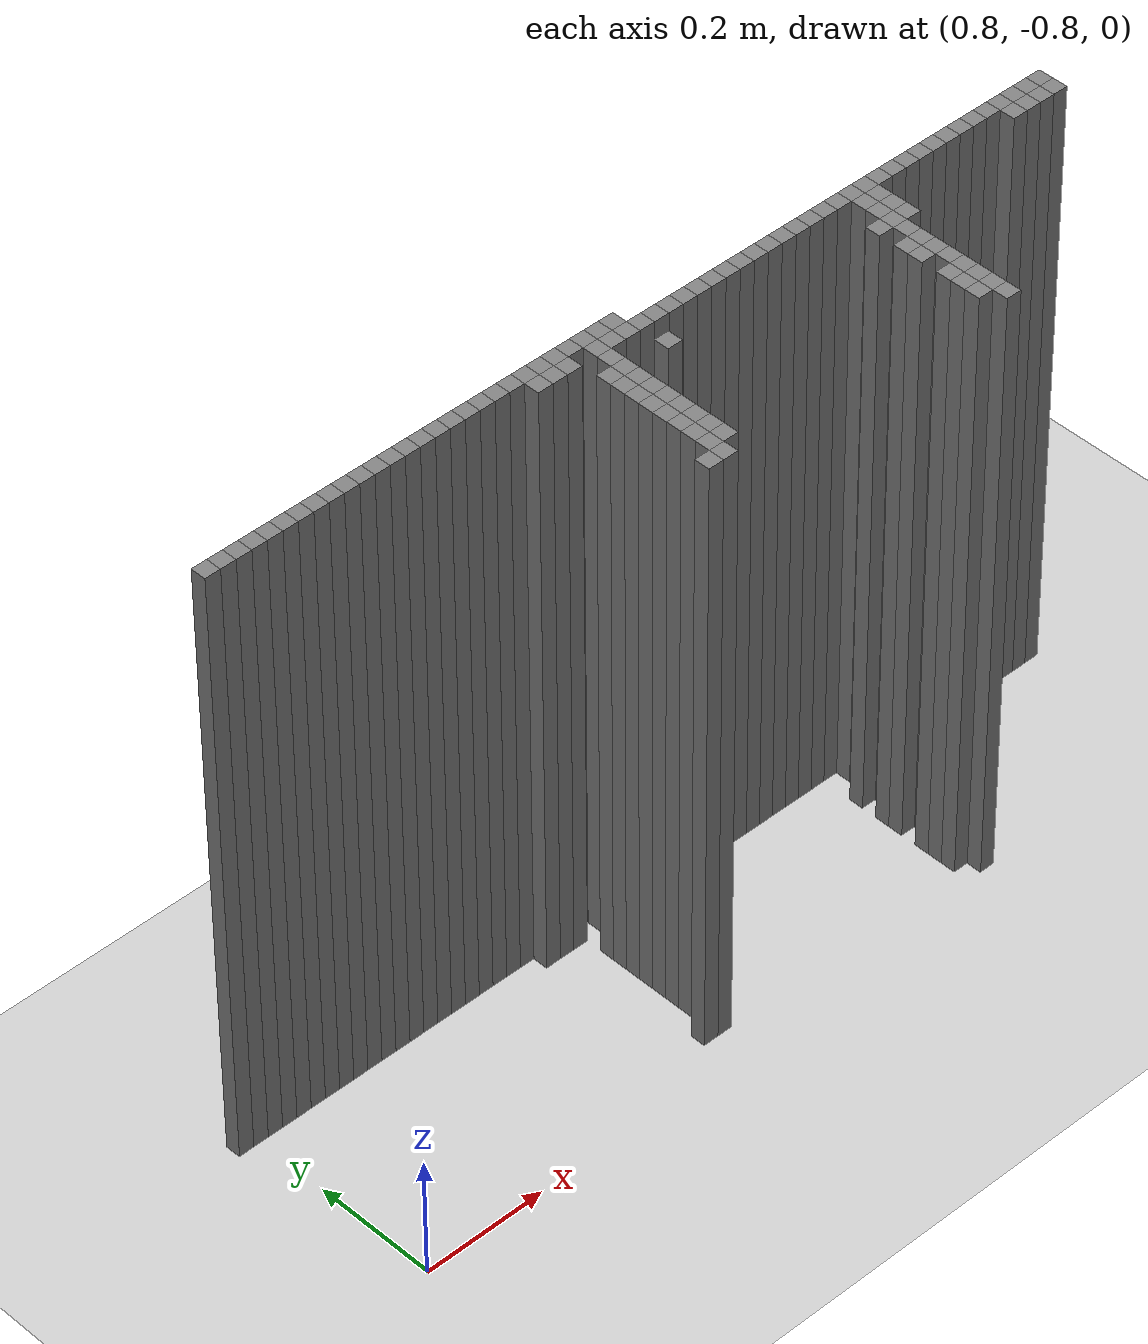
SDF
<sdf version="1.6">
 <world name="map_world">
  <include><uri>model://ground_plane</uri></include>
  <include><uri>model://sun</uri></include>
  <model name="obs_124_68">
   <static>true</static>
   <link name="link">
    <collision name="collision"><geometry><box><size>0.025 0.025 1.0</size></box></geometry></collision>
    <visual name="visual">
     <geometry><box><size>0.025 0.025 1.0</size></box></geometry>
     <material><ambient>0.5 0.5 0.5 1</ambient></material>
    </visual>
   </link>
   <pose>0.773765 -0.4690709999999998 0.5 0 0 0</pose>
  </model>
  <model name="obs_125_68">
   <static>true</static>
   <link name="link">
    <collision name="collision"><geometry><box><size>0.025 0.025 1.0</size></box></geometry></collision>
    <visual name="visual">
     <geometry><box><size>0.025 0.025 1.0</size></box></geometry>
     <material><ambient>0.5 0.5 0.5 1</ambient></material>
    </visual>
   </link>
   <pose>0.798765 -0.4690709999999998 0.5 0 0 0</pose>
  </model>
  <model name="obs_126_68">
   <static>true</static>
   <link name="link">
    <collision name="collision"><geometry><box><size>0.025 0.025 1.0</size></box></geometry></collision>
    <visual name="visual">
     <geometry><box><size>0.025 0.025 1.0</size></box></geometry>
     <material><ambient>0.5 0.5 0.5 1</ambient></material>
    </visual>
   </link>
   <pose>0.8237650000000003 -0.4690709999999998 0.5 0 0 0</pose>
  </model>
  <model name="obs_127_68">
   <static>true</static>
   <link name="link">
    <collision name="collision"><geometry><box><size>0.025 0.025 1.0</size></box></geometry></collision>
    <visual name="visual">
     <geometry><box><size>0.025 0.025 1.0</size></box></geometry>
     <material><ambient>0.5 0.5 0.5 1</ambient></material>
    </visual>
   </link>
   <pose>0.8487650000000002 -0.4690709999999998 0.5 0 0 0</pose>
  </model>
  <model name="obs_128_68">
   <static>true</static>
   <link name="link">
    <collision name="collision"><geometry><box><size>0.025 0.025 1.0</size></box></geometry></collision>
    <visual name="visual">
     <geometry><box><size>0.025 0.025 1.0</size></box></geometry>
     <material><ambient>0.5 0.5 0.5 1</ambient></material>
    </visual>
   </link>
   <pose>0.8737650000000001 -0.4690709999999998 0.5 0 0 0</pose>
  </model>
  <model name="obs_129_68">
   <static>true</static>
   <link name="link">
    <collision name="collision"><geometry><box><size>0.025 0.025 1.0</size></box></geometry></collision>
    <visual name="visual">
     <geometry><box><size>0.025 0.025 1.0</size></box></geometry>
     <material><ambient>0.5 0.5 0.5 1</ambient></material>
    </visual>
   </link>
   <pose>0.898765 -0.4690709999999998 0.5 0 0 0</pose>
  </model>
  <model name="obs_130_68">
   <static>true</static>
   <link name="link">
    <collision name="collision"><geometry><box><size>0.025 0.025 1.0</size></box></geometry></collision>
    <visual name="visual">
     <geometry><box><size>0.025 0.025 1.0</size></box></geometry>
     <material><ambient>0.5 0.5 0.5 1</ambient></material>
    </visual>
   </link>
   <pose>0.923765 -0.4690709999999998 0.5 0 0 0</pose>
  </model>
  <model name="obs_131_68">
   <static>true</static>
   <link name="link">
    <collision name="collision"><geometry><box><size>0.025 0.025 1.0</size></box></geometry></collision>
    <visual name="visual">
     <geometry><box><size>0.025 0.025 1.0</size></box></geometry>
     <material><ambient>0.5 0.5 0.5 1</ambient></material>
    </visual>
   </link>
   <pose>0.9487650000000003 -0.4690709999999998 0.5 0 0 0</pose>
  </model>
  <model name="obs_132_68">
   <static>true</static>
   <link name="link">
    <collision name="collision"><geometry><box><size>0.025 0.025 1.0</size></box></geometry></collision>
    <visual name="visual">
     <geometry><box><size>0.025 0.025 1.0</size></box></geometry>
     <material><ambient>0.5 0.5 0.5 1</ambient></material>
    </visual>
   </link>
   <pose>0.9737650000000002 -0.4690709999999998 0.5 0 0 0</pose>
  </model>
  <model name="obs_133_68">
   <static>true</static>
   <link name="link">
    <collision name="collision"><geometry><box><size>0.025 0.025 1.0</size></box></geometry></collision>
    <visual name="visual">
     <geometry><box><size>0.025 0.025 1.0</size></box></geometry>
     <material><ambient>0.5 0.5 0.5 1</ambient></material>
    </visual>
   </link>
   <pose>0.9987650000000001 -0.4690709999999998 0.5 0 0 0</pose>
  </model>
  <model name="obs_134_68">
   <static>true</static>
   <link name="link">
    <collision name="collision"><geometry><box><size>0.025 0.025 1.0</size></box></geometry></collision>
    <visual name="visual">
     <geometry><box><size>0.025 0.025 1.0</size></box></geometry>
     <material><ambient>0.5 0.5 0.5 1</ambient></material>
    </visual>
   </link>
   <pose>1.023765 -0.4690709999999998 0.5 0 0 0</pose>
  </model>
  <model name="obs_135_68">
   <static>true</static>
   <link name="link">
    <collision name="collision"><geometry><box><size>0.025 0.025 1.0</size></box></geometry></collision>
    <visual name="visual">
     <geometry><box><size>0.025 0.025 1.0</size></box></geometry>
     <material><ambient>0.5 0.5 0.5 1</ambient></material>
    </visual>
   </link>
   <pose>1.048765 -0.4690709999999998 0.5 0 0 0</pose>
  </model>
  <model name="obs_136_68">
   <static>true</static>
   <link name="link">
    <collision name="collision"><geometry><box><size>0.025 0.025 1.0</size></box></geometry></collision>
    <visual name="visual">
     <geometry><box><size>0.025 0.025 1.0</size></box></geometry>
     <material><ambient>0.5 0.5 0.5 1</ambient></material>
    </visual>
   </link>
   <pose>1.0737650000000003 -0.4690709999999998 0.5 0 0 0</pose>
  </model>
  <model name="obs_137_68">
   <static>true</static>
   <link name="link">
    <collision name="collision"><geometry><box><size>0.025 0.025 1.0</size></box></geometry></collision>
    <visual name="visual">
     <geometry><box><size>0.025 0.025 1.0</size></box></geometry>
     <material><ambient>0.5 0.5 0.5 1</ambient></material>
    </visual>
   </link>
   <pose>1.0987650000000002 -0.4690709999999998 0.5 0 0 0</pose>
  </model>
  <model name="obs_138_68">
   <static>true</static>
   <link name="link">
    <collision name="collision"><geometry><box><size>0.025 0.025 1.0</size></box></geometry></collision>
    <visual name="visual">
     <geometry><box><size>0.025 0.025 1.0</size></box></geometry>
     <material><ambient>0.5 0.5 0.5 1</ambient></material>
    </visual>
   </link>
   <pose>1.1237650000000001 -0.4690709999999998 0.5 0 0 0</pose>
  </model>
  <model name="obs_139_68">
   <static>true</static>
   <link name="link">
    <collision name="collision"><geometry><box><size>0.025 0.025 1.0</size></box></geometry></collision>
    <visual name="visual">
     <geometry><box><size>0.025 0.025 1.0</size></box></geometry>
     <material><ambient>0.5 0.5 0.5 1</ambient></material>
    </visual>
   </link>
   <pose>1.148765 -0.4690709999999998 0.5 0 0 0</pose>
  </model>
  <model name="obs_140_68">
   <static>true</static>
   <link name="link">
    <collision name="collision"><geometry><box><size>0.025 0.025 1.0</size></box></geometry></collision>
    <visual name="visual">
     <geometry><box><size>0.025 0.025 1.0</size></box></geometry>
     <material><ambient>0.5 0.5 0.5 1</ambient></material>
    </visual>
   </link>
   <pose>1.173765 -0.4690709999999998 0.5 0 0 0</pose>
  </model>
  <model name="obs_141_68">
   <static>true</static>
   <link name="link">
    <collision name="collision"><geometry><box><size>0.025 0.025 1.0</size></box></geometry></collision>
    <visual name="visual">
     <geometry><box><size>0.025 0.025 1.0</size></box></geometry>
     <material><ambient>0.5 0.5 0.5 1</ambient></material>
    </visual>
   </link>
   <pose>1.1987650000000003 -0.4690709999999998 0.5 0 0 0</pose>
  </model>
  <model name="obs_142_68">
   <static>true</static>
   <link name="link">
    <collision name="collision"><geometry><box><size>0.025 0.025 1.0</size></box></geometry></collision>
    <visual name="visual">
     <geometry><box><size>0.025 0.025 1.0</size></box></geometry>
     <material><ambient>0.5 0.5 0.5 1</ambient></material>
    </visual>
   </link>
   <pose>1.2237650000000002 -0.4690709999999998 0.5 0 0 0</pose>
  </model>
  <model name="obs_143_68">
   <static>true</static>
   <link name="link">
    <collision name="collision"><geometry><box><size>0.025 0.025 1.0</size></box></geometry></collision>
    <visual name="visual">
     <geometry><box><size>0.025 0.025 1.0</size></box></geometry>
     <material><ambient>0.5 0.5 0.5 1</ambient></material>
    </visual>
   </link>
   <pose>1.2487650000000001 -0.4690709999999998 0.5 0 0 0</pose>
  </model>
  <model name="obs_144_68">
   <static>true</static>
   <link name="link">
    <collision name="collision"><geometry><box><size>0.025 0.025 1.0</size></box></geometry></collision>
    <visual name="visual">
     <geometry><box><size>0.025 0.025 1.0</size></box></geometry>
     <material><ambient>0.5 0.5 0.5 1</ambient></material>
    </visual>
   </link>
   <pose>1.273765 -0.4690709999999998 0.5 0 0 0</pose>
  </model>
  <model name="obs_145_68">
   <static>true</static>
   <link name="link">
    <collision name="collision"><geometry><box><size>0.025 0.025 1.0</size></box></geometry></collision>
    <visual name="visual">
     <geometry><box><size>0.025 0.025 1.0</size></box></geometry>
     <material><ambient>0.5 0.5 0.5 1</ambient></material>
    </visual>
   </link>
   <pose>1.298765 -0.4690709999999998 0.5 0 0 0</pose>
  </model>
  <model name="obs_146_68">
   <static>true</static>
   <link name="link">
    <collision name="collision"><geometry><box><size>0.025 0.025 1.0</size></box></geometry></collision>
    <visual name="visual">
     <geometry><box><size>0.025 0.025 1.0</size></box></geometry>
     <material><ambient>0.5 0.5 0.5 1</ambient></material>
    </visual>
   </link>
   <pose>1.3237650000000003 -0.4690709999999998 0.5 0 0 0</pose>
  </model>
  <model name="obs_147_68">
   <static>true</static>
   <link name="link">
    <collision name="collision"><geometry><box><size>0.025 0.025 1.0</size></box></geometry></collision>
    <visual name="visual">
     <geometry><box><size>0.025 0.025 1.0</size></box></geometry>
     <material><ambient>0.5 0.5 0.5 1</ambient></material>
    </visual>
   </link>
   <pose>1.3487650000000002 -0.4690709999999998 0.5 0 0 0</pose>
  </model>
  <model name="obs_148_68">
   <static>true</static>
   <link name="link">
    <collision name="collision"><geometry><box><size>0.025 0.025 1.0</size></box></geometry></collision>
    <visual name="visual">
     <geometry><box><size>0.025 0.025 1.0</size></box></geometry>
     <material><ambient>0.5 0.5 0.5 1</ambient></material>
    </visual>
   </link>
   <pose>1.3737650000000001 -0.4690709999999998 0.5 0 0 0</pose>
  </model>
  <model name="obs_149_68">
   <static>true</static>
   <link name="link">
    <collision name="collision"><geometry><box><size>0.025 0.025 1.0</size></box></geometry></collision>
    <visual name="visual">
     <geometry><box><size>0.025 0.025 1.0</size></box></geometry>
     <material><ambient>0.5 0.5 0.5 1</ambient></material>
    </visual>
   </link>
   <pose>1.398765 -0.4690709999999998 0.5 0 0 0</pose>
  </model>
  <model name="obs_150_68">
   <static>true</static>
   <link name="link">
    <collision name="collision"><geometry><box><size>0.025 0.025 1.0</size></box></geometry></collision>
    <visual name="visual">
     <geometry><box><size>0.025 0.025 1.0</size></box></geometry>
     <material><ambient>0.5 0.5 0.5 1</ambient></material>
    </visual>
   </link>
   <pose>1.423765 -0.4690709999999998 0.5 0 0 0</pose>
  </model>
  <model name="obs_151_68">
   <static>true</static>
   <link name="link">
    <collision name="collision"><geometry><box><size>0.025 0.025 1.0</size></box></geometry></collision>
    <visual name="visual">
     <geometry><box><size>0.025 0.025 1.0</size></box></geometry>
     <material><ambient>0.5 0.5 0.5 1</ambient></material>
    </visual>
   </link>
   <pose>1.4487650000000003 -0.4690709999999998 0.5 0 0 0</pose>
  </model>
  <model name="obs_145_69">
   <static>true</static>
   <link name="link">
    <collision name="collision"><geometry><box><size>0.025 0.025 1.0</size></box></geometry></collision>
    <visual name="visual">
     <geometry><box><size>0.025 0.025 1.0</size></box></geometry>
     <material><ambient>0.5 0.5 0.5 1</ambient></material>
    </visual>
   </link>
   <pose>1.298765 -0.4940709999999999 0.5 0 0 0</pose>
  </model>
  <model name="obs_146_69">
   <static>true</static>
   <link name="link">
    <collision name="collision"><geometry><box><size>0.025 0.025 1.0</size></box></geometry></collision>
    <visual name="visual">
     <geometry><box><size>0.025 0.025 1.0</size></box></geometry>
     <material><ambient>0.5 0.5 0.5 1</ambient></material>
    </visual>
   </link>
   <pose>1.3237650000000003 -0.4940709999999999 0.5 0 0 0</pose>
  </model>
  <model name="obs_147_69">
   <static>true</static>
   <link name="link">
    <collision name="collision"><geometry><box><size>0.025 0.025 1.0</size></box></geometry></collision>
    <visual name="visual">
     <geometry><box><size>0.025 0.025 1.0</size></box></geometry>
     <material><ambient>0.5 0.5 0.5 1</ambient></material>
    </visual>
   </link>
   <pose>1.3487650000000002 -0.4940709999999999 0.5 0 0 0</pose>
  </model>
  <model name="obs_149_69">
   <static>true</static>
   <link name="link">
    <collision name="collision"><geometry><box><size>0.025 0.025 1.0</size></box></geometry></collision>
    <visual name="visual">
     <geometry><box><size>0.025 0.025 1.0</size></box></geometry>
     <material><ambient>0.5 0.5 0.5 1</ambient></material>
    </visual>
   </link>
   <pose>1.398765 -0.4940709999999999 0.5 0 0 0</pose>
  </model>
  <model name="obs_150_69">
   <static>true</static>
   <link name="link">
    <collision name="collision"><geometry><box><size>0.025 0.025 1.0</size></box></geometry></collision>
    <visual name="visual">
     <geometry><box><size>0.025 0.025 1.0</size></box></geometry>
     <material><ambient>0.5 0.5 0.5 1</ambient></material>
    </visual>
   </link>
   <pose>1.423765 -0.4940709999999999 0.5 0 0 0</pose>
  </model>
  <model name="obs_151_69">
   <static>true</static>
   <link name="link">
    <collision name="collision"><geometry><box><size>0.025 0.025 1.0</size></box></geometry></collision>
    <visual name="visual">
     <geometry><box><size>0.025 0.025 1.0</size></box></geometry>
     <material><ambient>0.5 0.5 0.5 1</ambient></material>
    </visual>
   </link>
   <pose>1.4487650000000003 -0.4940709999999999 0.5 0 0 0</pose>
  </model>
  <model name="obs_152_69">
   <static>true</static>
   <link name="link">
    <collision name="collision"><geometry><box><size>0.025 0.025 1.0</size></box></geometry></collision>
    <visual name="visual">
     <geometry><box><size>0.025 0.025 1.0</size></box></geometry>
     <material><ambient>0.5 0.5 0.5 1</ambient></material>
    </visual>
   </link>
   <pose>1.4737650000000002 -0.4940709999999999 0.5 0 0 0</pose>
  </model>
  <model name="obs_153_69">
   <static>true</static>
   <link name="link">
    <collision name="collision"><geometry><box><size>0.025 0.025 1.0</size></box></geometry></collision>
    <visual name="visual">
     <geometry><box><size>0.025 0.025 1.0</size></box></geometry>
     <material><ambient>0.5 0.5 0.5 1</ambient></material>
    </visual>
   </link>
   <pose>1.4987650000000001 -0.4940709999999999 0.5 0 0 0</pose>
  </model>
  <model name="obs_154_69">
   <static>true</static>
   <link name="link">
    <collision name="collision"><geometry><box><size>0.025 0.025 1.0</size></box></geometry></collision>
    <visual name="visual">
     <geometry><box><size>0.025 0.025 1.0</size></box></geometry>
     <material><ambient>0.5 0.5 0.5 1</ambient></material>
    </visual>
   </link>
   <pose>1.523765 -0.4940709999999999 0.5 0 0 0</pose>
  </model>
  <model name="obs_155_69">
   <static>true</static>
   <link name="link">
    <collision name="collision"><geometry><box><size>0.025 0.025 1.0</size></box></geometry></collision>
    <visual name="visual">
     <geometry><box><size>0.025 0.025 1.0</size></box></geometry>
     <material><ambient>0.5 0.5 0.5 1</ambient></material>
    </visual>
   </link>
   <pose>1.548765 -0.4940709999999999 0.5 0 0 0</pose>
  </model>
  <model name="obs_156_69">
   <static>true</static>
   <link name="link">
    <collision name="collision"><geometry><box><size>0.025 0.025 1.0</size></box></geometry></collision>
    <visual name="visual">
     <geometry><box><size>0.025 0.025 1.0</size></box></geometry>
     <material><ambient>0.5 0.5 0.5 1</ambient></material>
    </visual>
   </link>
   <pose>1.5737650000000003 -0.4940709999999999 0.5 0 0 0</pose>
  </model>
  <model name="obs_157_69">
   <static>true</static>
   <link name="link">
    <collision name="collision"><geometry><box><size>0.025 0.025 1.0</size></box></geometry></collision>
    <visual name="visual">
     <geometry><box><size>0.025 0.025 1.0</size></box></geometry>
     <material><ambient>0.5 0.5 0.5 1</ambient></material>
    </visual>
   </link>
   <pose>1.5987650000000002 -0.4940709999999999 0.5 0 0 0</pose>
  </model>
  <model name="obs_158_69">
   <static>true</static>
   <link name="link">
    <collision name="collision"><geometry><box><size>0.025 0.025 1.0</size></box></geometry></collision>
    <visual name="visual">
     <geometry><box><size>0.025 0.025 1.0</size></box></geometry>
     <material><ambient>0.5 0.5 0.5 1</ambient></material>
    </visual>
   </link>
   <pose>1.6237650000000001 -0.4940709999999999 0.5 0 0 0</pose>
  </model>
  <model name="obs_159_69">
   <static>true</static>
   <link name="link">
    <collision name="collision"><geometry><box><size>0.025 0.025 1.0</size></box></geometry></collision>
    <visual name="visual">
     <geometry><box><size>0.025 0.025 1.0</size></box></geometry>
     <material><ambient>0.5 0.5 0.5 1</ambient></material>
    </visual>
   </link>
   <pose>1.648765 -0.4940709999999999 0.5 0 0 0</pose>
  </model>
  <model name="obs_160_69">
   <static>true</static>
   <link name="link">
    <collision name="collision"><geometry><box><size>0.025 0.025 1.0</size></box></geometry></collision>
    <visual name="visual">
     <geometry><box><size>0.025 0.025 1.0</size></box></geometry>
     <material><ambient>0.5 0.5 0.5 1</ambient></material>
    </visual>
   </link>
   <pose>1.673765 -0.4940709999999999 0.5 0 0 0</pose>
  </model>
  <model name="obs_161_69">
   <static>true</static>
   <link name="link">
    <collision name="collision"><geometry><box><size>0.025 0.025 1.0</size></box></geometry></collision>
    <visual name="visual">
     <geometry><box><size>0.025 0.025 1.0</size></box></geometry>
     <material><ambient>0.5 0.5 0.5 1</ambient></material>
    </visual>
   </link>
   <pose>1.6987650000000003 -0.4940709999999999 0.5 0 0 0</pose>
  </model>
  <model name="obs_162_69">
   <static>true</static>
   <link name="link">
    <collision name="collision"><geometry><box><size>0.025 0.025 1.0</size></box></geometry></collision>
    <visual name="visual">
     <geometry><box><size>0.025 0.025 1.0</size></box></geometry>
     <material><ambient>0.5 0.5 0.5 1</ambient></material>
    </visual>
   </link>
   <pose>1.7237649999999998 -0.4940709999999999 0.5 0 0 0</pose>
  </model>
  <model name="obs_163_69">
   <static>true</static>
   <link name="link">
    <collision name="collision"><geometry><box><size>0.025 0.025 1.0</size></box></geometry></collision>
    <visual name="visual">
     <geometry><box><size>0.025 0.025 1.0</size></box></geometry>
     <material><ambient>0.5 0.5 0.5 1</ambient></material>
    </visual>
   </link>
   <pose>1.7487650000000001 -0.4940709999999999 0.5 0 0 0</pose>
  </model>
  <model name="obs_164_69">
   <static>true</static>
   <link name="link">
    <collision name="collision"><geometry><box><size>0.025 0.025 1.0</size></box></geometry></collision>
    <visual name="visual">
     <geometry><box><size>0.025 0.025 1.0</size></box></geometry>
     <material><ambient>0.5 0.5 0.5 1</ambient></material>
    </visual>
   </link>
   <pose>1.7737650000000005 -0.4940709999999999 0.5 0 0 0</pose>
  </model>
  <model name="obs_165_69">
   <static>true</static>
   <link name="link">
    <collision name="collision"><geometry><box><size>0.025 0.025 1.0</size></box></geometry></collision>
    <visual name="visual">
     <geometry><box><size>0.025 0.025 1.0</size></box></geometry>
     <material><ambient>0.5 0.5 0.5 1</ambient></material>
    </visual>
   </link>
   <pose>1.798765 -0.4940709999999999 0.5 0 0 0</pose>
  </model>
  <model name="obs_166_69">
   <static>true</static>
   <link name="link">
    <collision name="collision"><geometry><box><size>0.025 0.025 1.0</size></box></geometry></collision>
    <visual name="visual">
     <geometry><box><size>0.025 0.025 1.0</size></box></geometry>
     <material><ambient>0.5 0.5 0.5 1</ambient></material>
    </visual>
   </link>
   <pose>1.8237650000000003 -0.4940709999999999 0.5 0 0 0</pose>
  </model>
  <model name="obs_167_69">
   <static>true</static>
   <link name="link">
    <collision name="collision"><geometry><box><size>0.025 0.025 1.0</size></box></geometry></collision>
    <visual name="visual">
     <geometry><box><size>0.025 0.025 1.0</size></box></geometry>
     <material><ambient>0.5 0.5 0.5 1</ambient></material>
    </visual>
   </link>
   <pose>1.8487649999999998 -0.4940709999999999 0.5 0 0 0</pose>
  </model>
  <model name="obs_168_69">
   <static>true</static>
   <link name="link">
    <collision name="collision"><geometry><box><size>0.025 0.025 1.0</size></box></geometry></collision>
    <visual name="visual">
     <geometry><box><size>0.025 0.025 1.0</size></box></geometry>
     <material><ambient>0.5 0.5 0.5 1</ambient></material>
    </visual>
   </link>
   <pose>1.8737650000000001 -0.4940709999999999 0.5 0 0 0</pose>
  </model>
  <model name="obs_169_69">
   <static>true</static>
   <link name="link">
    <collision name="collision"><geometry><box><size>0.025 0.025 1.0</size></box></geometry></collision>
    <visual name="visual">
     <geometry><box><size>0.025 0.025 1.0</size></box></geometry>
     <material><ambient>0.5 0.5 0.5 1</ambient></material>
    </visual>
   </link>
   <pose>1.8987650000000005 -0.4940709999999999 0.5 0 0 0</pose>
  </model>
  <model name="obs_170_69">
   <static>true</static>
   <link name="link">
    <collision name="collision"><geometry><box><size>0.025 0.025 1.0</size></box></geometry></collision>
    <visual name="visual">
     <geometry><box><size>0.025 0.025 1.0</size></box></geometry>
     <material><ambient>0.5 0.5 0.5 1</ambient></material>
    </visual>
   </link>
   <pose>1.923765 -0.4940709999999999 0.5 0 0 0</pose>
  </model>
  <model name="obs_171_69">
   <static>true</static>
   <link name="link">
    <collision name="collision"><geometry><box><size>0.025 0.025 1.0</size></box></geometry></collision>
    <visual name="visual">
     <geometry><box><size>0.025 0.025 1.0</size></box></geometry>
     <material><ambient>0.5 0.5 0.5 1</ambient></material>
    </visual>
   </link>
   <pose>1.9487650000000003 -0.4940709999999999 0.5 0 0 0</pose>
  </model>
  <model name="obs_172_69">
   <static>true</static>
   <link name="link">
    <collision name="collision"><geometry><box><size>0.025 0.025 1.0</size></box></geometry></collision>
    <visual name="visual">
     <geometry><box><size>0.025 0.025 1.0</size></box></geometry>
     <material><ambient>0.5 0.5 0.5 1</ambient></material>
    </visual>
   </link>
   <pose>1.9737649999999998 -0.4940709999999999 0.5 0 0 0</pose>
  </model>
  <model name="obs_173_69">
   <static>true</static>
   <link name="link">
    <collision name="collision"><geometry><box><size>0.025 0.025 1.0</size></box></geometry></collision>
    <visual name="visual">
     <geometry><box><size>0.025 0.025 1.0</size></box></geometry>
     <material><ambient>0.5 0.5 0.5 1</ambient></material>
    </visual>
   </link>
   <pose>1.9987650000000001 -0.4940709999999999 0.5 0 0 0</pose>
  </model>
  <model name="obs_174_69">
   <static>true</static>
   <link name="link">
    <collision name="collision"><geometry><box><size>0.025 0.025 1.0</size></box></geometry></collision>
    <visual name="visual">
     <geometry><box><size>0.025 0.025 1.0</size></box></geometry>
     <material><ambient>0.5 0.5 0.5 1</ambient></material>
    </visual>
   </link>
   <pose>2.0237650000000005 -0.4940709999999999 0.5 0 0 0</pose>
  </model>
  <model name="obs_175_69">
   <static>true</static>
   <link name="link">
    <collision name="collision"><geometry><box><size>0.025 0.025 1.0</size></box></geometry></collision>
    <visual name="visual">
     <geometry><box><size>0.025 0.025 1.0</size></box></geometry>
     <material><ambient>0.5 0.5 0.5 1</ambient></material>
    </visual>
   </link>
   <pose>2.048765 -0.4940709999999999 0.5 0 0 0</pose>
  </model>
  <model name="obs_176_69">
   <static>true</static>
   <link name="link">
    <collision name="collision"><geometry><box><size>0.025 0.025 1.0</size></box></geometry></collision>
    <visual name="visual">
     <geometry><box><size>0.025 0.025 1.0</size></box></geometry>
     <material><ambient>0.5 0.5 0.5 1</ambient></material>
    </visual>
   </link>
   <pose>2.0737650000000003 -0.4940709999999999 0.5 0 0 0</pose>
  </model>
  <model name="obs_177_69">
   <static>true</static>
   <link name="link">
    <collision name="collision"><geometry><box><size>0.025 0.025 1.0</size></box></geometry></collision>
    <visual name="visual">
     <geometry><box><size>0.025 0.025 1.0</size></box></geometry>
     <material><ambient>0.5 0.5 0.5 1</ambient></material>
    </visual>
   </link>
   <pose>2.0987649999999998 -0.4940709999999999 0.5 0 0 0</pose>
  </model>
  <model name="obs_178_69">
   <static>true</static>
   <link name="link">
    <collision name="collision"><geometry><box><size>0.025 0.025 1.0</size></box></geometry></collision>
    <visual name="visual">
     <geometry><box><size>0.025 0.025 1.0</size></box></geometry>
     <material><ambient>0.5 0.5 0.5 1</ambient></material>
    </visual>
   </link>
   <pose>2.123765 -0.4940709999999999 0.5 0 0 0</pose>
  </model>
  <model name="obs_179_69">
   <static>true</static>
   <link name="link">
    <collision name="collision"><geometry><box><size>0.025 0.025 1.0</size></box></geometry></collision>
    <visual name="visual">
     <geometry><box><size>0.025 0.025 1.0</size></box></geometry>
     <material><ambient>0.5 0.5 0.5 1</ambient></material>
    </visual>
   </link>
   <pose>2.1487650000000005 -0.4940709999999999 0.5 0 0 0</pose>
  </model>
  <model name="obs_180_69">
   <static>true</static>
   <link name="link">
    <collision name="collision"><geometry><box><size>0.025 0.025 1.0</size></box></geometry></collision>
    <visual name="visual">
     <geometry><box><size>0.025 0.025 1.0</size></box></geometry>
     <material><ambient>0.5 0.5 0.5 1</ambient></material>
    </visual>
   </link>
   <pose>2.173765 -0.4940709999999999 0.5 0 0 0</pose>
  </model>
  <model name="obs_181_69">
   <static>true</static>
   <link name="link">
    <collision name="collision"><geometry><box><size>0.025 0.025 1.0</size></box></geometry></collision>
    <visual name="visual">
     <geometry><box><size>0.025 0.025 1.0</size></box></geometry>
     <material><ambient>0.5 0.5 0.5 1</ambient></material>
    </visual>
   </link>
   <pose>2.1987650000000003 -0.4940709999999999 0.5 0 0 0</pose>
  </model>
  <model name="obs_149_70">
   <static>true</static>
   <link name="link">
    <collision name="collision"><geometry><box><size>0.025 0.025 1.0</size></box></geometry></collision>
    <visual name="visual">
     <geometry><box><size>0.025 0.025 1.0</size></box></geometry>
     <material><ambient>0.5 0.5 0.5 1</ambient></material>
    </visual>
   </link>
   <pose>1.398765 -0.5190709999999998 0.5 0 0 0</pose>
  </model>
  <model name="obs_167_70">
   <static>true</static>
   <link name="link">
    <collision name="collision"><geometry><box><size>0.025 0.025 1.0</size></box></geometry></collision>
    <visual name="visual">
     <geometry><box><size>0.025 0.025 1.0</size></box></geometry>
     <material><ambient>0.5 0.5 0.5 1</ambient></material>
    </visual>
   </link>
   <pose>1.8487649999999998 -0.5190709999999998 0.5 0 0 0</pose>
  </model>
  <model name="obs_168_70">
   <static>true</static>
   <link name="link">
    <collision name="collision"><geometry><box><size>0.025 0.025 1.0</size></box></geometry></collision>
    <visual name="visual">
     <geometry><box><size>0.025 0.025 1.0</size></box></geometry>
     <material><ambient>0.5 0.5 0.5 1</ambient></material>
    </visual>
   </link>
   <pose>1.8737650000000001 -0.5190709999999998 0.5 0 0 0</pose>
  </model>
  <model name="obs_178_70">
   <static>true</static>
   <link name="link">
    <collision name="collision"><geometry><box><size>0.025 0.025 1.0</size></box></geometry></collision>
    <visual name="visual">
     <geometry><box><size>0.025 0.025 1.0</size></box></geometry>
     <material><ambient>0.5 0.5 0.5 1</ambient></material>
    </visual>
   </link>
   <pose>2.123765 -0.5190709999999998 0.5 0 0 0</pose>
  </model>
  <model name="obs_179_70">
   <static>true</static>
   <link name="link">
    <collision name="collision"><geometry><box><size>0.025 0.025 1.0</size></box></geometry></collision>
    <visual name="visual">
     <geometry><box><size>0.025 0.025 1.0</size></box></geometry>
     <material><ambient>0.5 0.5 0.5 1</ambient></material>
    </visual>
   </link>
   <pose>2.1487650000000005 -0.5190709999999998 0.5 0 0 0</pose>
  </model>
  <model name="obs_180_70">
   <static>true</static>
   <link name="link">
    <collision name="collision"><geometry><box><size>0.025 0.025 1.0</size></box></geometry></collision>
    <visual name="visual">
     <geometry><box><size>0.025 0.025 1.0</size></box></geometry>
     <material><ambient>0.5 0.5 0.5 1</ambient></material>
    </visual>
   </link>
   <pose>2.173765 -0.5190709999999998 0.5 0 0 0</pose>
  </model>
  <model name="obs_181_70">
   <static>true</static>
   <link name="link">
    <collision name="collision"><geometry><box><size>0.025 0.025 1.0</size></box></geometry></collision>
    <visual name="visual">
     <geometry><box><size>0.025 0.025 1.0</size></box></geometry>
     <material><ambient>0.5 0.5 0.5 1</ambient></material>
    </visual>
   </link>
   <pose>2.1987650000000003 -0.5190709999999998 0.5 0 0 0</pose>
  </model>
  <model name="obs_148_71">
   <static>true</static>
   <link name="link">
    <collision name="collision"><geometry><box><size>0.025 0.025 1.0</size></box></geometry></collision>
    <visual name="visual">
     <geometry><box><size>0.025 0.025 1.0</size></box></geometry>
     <material><ambient>0.5 0.5 0.5 1</ambient></material>
    </visual>
   </link>
   <pose>1.3737650000000001 -0.5440709999999997 0.5 0 0 0</pose>
  </model>
  <model name="obs_149_71">
   <static>true</static>
   <link name="link">
    <collision name="collision"><geometry><box><size>0.025 0.025 1.0</size></box></geometry></collision>
    <visual name="visual">
     <geometry><box><size>0.025 0.025 1.0</size></box></geometry>
     <material><ambient>0.5 0.5 0.5 1</ambient></material>
    </visual>
   </link>
   <pose>1.398765 -0.5440709999999997 0.5 0 0 0</pose>
  </model>
  <model name="obs_152_71">
   <static>true</static>
   <link name="link">
    <collision name="collision"><geometry><box><size>0.025 0.025 1.0</size></box></geometry></collision>
    <visual name="visual">
     <geometry><box><size>0.025 0.025 1.0</size></box></geometry>
     <material><ambient>0.5 0.5 0.5 1</ambient></material>
    </visual>
   </link>
   <pose>1.4737650000000002 -0.5440709999999997 0.5 0 0 0</pose>
  </model>
  <model name="obs_167_71">
   <static>true</static>
   <link name="link">
    <collision name="collision"><geometry><box><size>0.025 0.025 1.0</size></box></geometry></collision>
    <visual name="visual">
     <geometry><box><size>0.025 0.025 1.0</size></box></geometry>
     <material><ambient>0.5 0.5 0.5 1</ambient></material>
    </visual>
   </link>
   <pose>1.8487649999999998 -0.5440709999999997 0.5 0 0 0</pose>
  </model>
  <model name="obs_168_71">
   <static>true</static>
   <link name="link">
    <collision name="collision"><geometry><box><size>0.025 0.025 1.0</size></box></geometry></collision>
    <visual name="visual">
     <geometry><box><size>0.025 0.025 1.0</size></box></geometry>
     <material><ambient>0.5 0.5 0.5 1</ambient></material>
    </visual>
   </link>
   <pose>1.8737650000000001 -0.5440709999999997 0.5 0 0 0</pose>
  </model>
  <model name="obs_148_72">
   <static>true</static>
   <link name="link">
    <collision name="collision"><geometry><box><size>0.025 0.025 1.0</size></box></geometry></collision>
    <visual name="visual">
     <geometry><box><size>0.025 0.025 1.0</size></box></geometry>
     <material><ambient>0.5 0.5 0.5 1</ambient></material>
    </visual>
   </link>
   <pose>1.3737650000000001 -0.5690709999999999 0.5 0 0 0</pose>
  </model>
  <model name="obs_149_72">
   <static>true</static>
   <link name="link">
    <collision name="collision"><geometry><box><size>0.025 0.025 1.0</size></box></geometry></collision>
    <visual name="visual">
     <geometry><box><size>0.025 0.025 1.0</size></box></geometry>
     <material><ambient>0.5 0.5 0.5 1</ambient></material>
    </visual>
   </link>
   <pose>1.398765 -0.5690709999999999 0.5 0 0 0</pose>
  </model>
  <model name="obs_166_72">
   <static>true</static>
   <link name="link">
    <collision name="collision"><geometry><box><size>0.025 0.025 1.0</size></box></geometry></collision>
    <visual name="visual">
     <geometry><box><size>0.025 0.025 1.0</size></box></geometry>
     <material><ambient>0.5 0.5 0.5 1</ambient></material>
    </visual>
   </link>
   <pose>1.8237650000000003 -0.5690709999999999 0.5 0 0 0</pose>
  </model>
  <model name="obs_167_72">
   <static>true</static>
   <link name="link">
    <collision name="collision"><geometry><box><size>0.025 0.025 1.0</size></box></geometry></collision>
    <visual name="visual">
     <geometry><box><size>0.025 0.025 1.0</size></box></geometry>
     <material><ambient>0.5 0.5 0.5 1</ambient></material>
    </visual>
   </link>
   <pose>1.8487649999999998 -0.5690709999999999 0.5 0 0 0</pose>
  </model>
  <model name="obs_168_72">
   <static>true</static>
   <link name="link">
    <collision name="collision"><geometry><box><size>0.025 0.025 1.0</size></box></geometry></collision>
    <visual name="visual">
     <geometry><box><size>0.025 0.025 1.0</size></box></geometry>
     <material><ambient>0.5 0.5 0.5 1</ambient></material>
    </visual>
   </link>
   <pose>1.8737650000000001 -0.5690709999999999 0.5 0 0 0</pose>
  </model>
  <model name="obs_148_73">
   <static>true</static>
   <link name="link">
    <collision name="collision"><geometry><box><size>0.025 0.025 1.0</size></box></geometry></collision>
    <visual name="visual">
     <geometry><box><size>0.025 0.025 1.0</size></box></geometry>
     <material><ambient>0.5 0.5 0.5 1</ambient></material>
    </visual>
   </link>
   <pose>1.3737650000000001 -0.5940709999999998 0.5 0 0 0</pose>
  </model>
  <model name="obs_149_73">
   <static>true</static>
   <link name="link">
    <collision name="collision"><geometry><box><size>0.025 0.025 1.0</size></box></geometry></collision>
    <visual name="visual">
     <geometry><box><size>0.025 0.025 1.0</size></box></geometry>
     <material><ambient>0.5 0.5 0.5 1</ambient></material>
    </visual>
   </link>
   <pose>1.398765 -0.5940709999999998 0.5 0 0 0</pose>
  </model>
  <model name="obs_167_73">
   <static>true</static>
   <link name="link">
    <collision name="collision"><geometry><box><size>0.025 0.025 1.0</size></box></geometry></collision>
    <visual name="visual">
     <geometry><box><size>0.025 0.025 1.0</size></box></geometry>
     <material><ambient>0.5 0.5 0.5 1</ambient></material>
    </visual>
   </link>
   <pose>1.8487649999999998 -0.5940709999999998 0.5 0 0 0</pose>
  </model>
  <model name="obs_148_74">
   <static>true</static>
   <link name="link">
    <collision name="collision"><geometry><box><size>0.025 0.025 1.0</size></box></geometry></collision>
    <visual name="visual">
     <geometry><box><size>0.025 0.025 1.0</size></box></geometry>
     <material><ambient>0.5 0.5 0.5 1</ambient></material>
    </visual>
   </link>
   <pose>1.3737650000000001 -0.6190709999999999 0.5 0 0 0</pose>
  </model>
  <model name="obs_149_74">
   <static>true</static>
   <link name="link">
    <collision name="collision"><geometry><box><size>0.025 0.025 1.0</size></box></geometry></collision>
    <visual name="visual">
     <geometry><box><size>0.025 0.025 1.0</size></box></geometry>
     <material><ambient>0.5 0.5 0.5 1</ambient></material>
    </visual>
   </link>
   <pose>1.398765 -0.6190709999999999 0.5 0 0 0</pose>
  </model>
  <model name="obs_166_74">
   <static>true</static>
   <link name="link">
    <collision name="collision"><geometry><box><size>0.025 0.025 1.0</size></box></geometry></collision>
    <visual name="visual">
     <geometry><box><size>0.025 0.025 1.0</size></box></geometry>
     <material><ambient>0.5 0.5 0.5 1</ambient></material>
    </visual>
   </link>
   <pose>1.8237650000000003 -0.6190709999999999 0.5 0 0 0</pose>
  </model>
  <model name="obs_167_74">
   <static>true</static>
   <link name="link">
    <collision name="collision"><geometry><box><size>0.025 0.025 1.0</size></box></geometry></collision>
    <visual name="visual">
     <geometry><box><size>0.025 0.025 1.0</size></box></geometry>
     <material><ambient>0.5 0.5 0.5 1</ambient></material>
    </visual>
   </link>
   <pose>1.8487649999999998 -0.6190709999999999 0.5 0 0 0</pose>
  </model>
  <model name="obs_148_75">
   <static>true</static>
   <link name="link">
    <collision name="collision"><geometry><box><size>0.025 0.025 1.0</size></box></geometry></collision>
    <visual name="visual">
     <geometry><box><size>0.025 0.025 1.0</size></box></geometry>
     <material><ambient>0.5 0.5 0.5 1</ambient></material>
    </visual>
   </link>
   <pose>1.3737650000000001 -0.6440709999999998 0.5 0 0 0</pose>
  </model>
  <model name="obs_149_75">
   <static>true</static>
   <link name="link">
    <collision name="collision"><geometry><box><size>0.025 0.025 1.0</size></box></geometry></collision>
    <visual name="visual">
     <geometry><box><size>0.025 0.025 1.0</size></box></geometry>
     <material><ambient>0.5 0.5 0.5 1</ambient></material>
    </visual>
   </link>
   <pose>1.398765 -0.6440709999999998 0.5 0 0 0</pose>
  </model>
  <model name="obs_166_75">
   <static>true</static>
   <link name="link">
    <collision name="collision"><geometry><box><size>0.025 0.025 1.0</size></box></geometry></collision>
    <visual name="visual">
     <geometry><box><size>0.025 0.025 1.0</size></box></geometry>
     <material><ambient>0.5 0.5 0.5 1</ambient></material>
    </visual>
   </link>
   <pose>1.8237650000000003 -0.6440709999999998 0.5 0 0 0</pose>
  </model>
  <model name="obs_167_75">
   <static>true</static>
   <link name="link">
    <collision name="collision"><geometry><box><size>0.025 0.025 1.0</size></box></geometry></collision>
    <visual name="visual">
     <geometry><box><size>0.025 0.025 1.0</size></box></geometry>
     <material><ambient>0.5 0.5 0.5 1</ambient></material>
    </visual>
   </link>
   <pose>1.8487649999999998 -0.6440709999999998 0.5 0 0 0</pose>
  </model>
  <model name="obs_148_76">
   <static>true</static>
   <link name="link">
    <collision name="collision"><geometry><box><size>0.025 0.025 1.0</size></box></geometry></collision>
    <visual name="visual">
     <geometry><box><size>0.025 0.025 1.0</size></box></geometry>
     <material><ambient>0.5 0.5 0.5 1</ambient></material>
    </visual>
   </link>
   <pose>1.3737650000000001 -0.6690709999999997 0.5 0 0 0</pose>
  </model>
  <model name="obs_149_76">
   <static>true</static>
   <link name="link">
    <collision name="collision"><geometry><box><size>0.025 0.025 1.0</size></box></geometry></collision>
    <visual name="visual">
     <geometry><box><size>0.025 0.025 1.0</size></box></geometry>
     <material><ambient>0.5 0.5 0.5 1</ambient></material>
    </visual>
   </link>
   <pose>1.398765 -0.6690709999999997 0.5 0 0 0</pose>
  </model>
  <model name="obs_167_76">
   <static>true</static>
   <link name="link">
    <collision name="collision"><geometry><box><size>0.025 0.025 1.0</size></box></geometry></collision>
    <visual name="visual">
     <geometry><box><size>0.025 0.025 1.0</size></box></geometry>
     <material><ambient>0.5 0.5 0.5 1</ambient></material>
    </visual>
   </link>
   <pose>1.8487649999999998 -0.6690709999999997 0.5 0 0 0</pose>
  </model>
  <model name="obs_148_77">
   <static>true</static>
   <link name="link">
    <collision name="collision"><geometry><box><size>0.025 0.025 1.0</size></box></geometry></collision>
    <visual name="visual">
     <geometry><box><size>0.025 0.025 1.0</size></box></geometry>
     <material><ambient>0.5 0.5 0.5 1</ambient></material>
    </visual>
   </link>
   <pose>1.3737650000000001 -0.6940709999999999 0.5 0 0 0</pose>
  </model>
  <model name="obs_149_77">
   <static>true</static>
   <link name="link">
    <collision name="collision"><geometry><box><size>0.025 0.025 1.0</size></box></geometry></collision>
    <visual name="visual">
     <geometry><box><size>0.025 0.025 1.0</size></box></geometry>
     <material><ambient>0.5 0.5 0.5 1</ambient></material>
    </visual>
   </link>
   <pose>1.398765 -0.6940709999999999 0.5 0 0 0</pose>
  </model>
  <model name="obs_166_77">
   <static>true</static>
   <link name="link">
    <collision name="collision"><geometry><box><size>0.025 0.025 1.0</size></box></geometry></collision>
    <visual name="visual">
     <geometry><box><size>0.025 0.025 1.0</size></box></geometry>
     <material><ambient>0.5 0.5 0.5 1</ambient></material>
    </visual>
   </link>
   <pose>1.8237650000000003 -0.6940709999999999 0.5 0 0 0</pose>
  </model>
  <model name="obs_167_77">
   <static>true</static>
   <link name="link">
    <collision name="collision"><geometry><box><size>0.025 0.025 1.0</size></box></geometry></collision>
    <visual name="visual">
     <geometry><box><size>0.025 0.025 1.0</size></box></geometry>
     <material><ambient>0.5 0.5 0.5 1</ambient></material>
    </visual>
   </link>
   <pose>1.8487649999999998 -0.6940709999999999 0.5 0 0 0</pose>
  </model>
  <model name="obs_148_78">
   <static>true</static>
   <link name="link">
    <collision name="collision"><geometry><box><size>0.025 0.025 1.0</size></box></geometry></collision>
    <visual name="visual">
     <geometry><box><size>0.025 0.025 1.0</size></box></geometry>
     <material><ambient>0.5 0.5 0.5 1</ambient></material>
    </visual>
   </link>
   <pose>1.3737650000000001 -0.7190709999999998 0.5 0 0 0</pose>
  </model>
  <model name="obs_149_78">
   <static>true</static>
   <link name="link">
    <collision name="collision"><geometry><box><size>0.025 0.025 1.0</size></box></geometry></collision>
    <visual name="visual">
     <geometry><box><size>0.025 0.025 1.0</size></box></geometry>
     <material><ambient>0.5 0.5 0.5 1</ambient></material>
    </visual>
   </link>
   <pose>1.398765 -0.7190709999999998 0.5 0 0 0</pose>
  </model>
  <model name="obs_166_78">
   <static>true</static>
   <link name="link">
    <collision name="collision"><geometry><box><size>0.025 0.025 1.0</size></box></geometry></collision>
    <visual name="visual">
     <geometry><box><size>0.025 0.025 1.0</size></box></geometry>
     <material><ambient>0.5 0.5 0.5 1</ambient></material>
    </visual>
   </link>
   <pose>1.8237650000000003 -0.7190709999999998 0.5 0 0 0</pose>
  </model>
  <model name="obs_167_78">
   <static>true</static>
   <link name="link">
    <collision name="collision"><geometry><box><size>0.025 0.025 1.0</size></box></geometry></collision>
    <visual name="visual">
     <geometry><box><size>0.025 0.025 1.0</size></box></geometry>
     <material><ambient>0.5 0.5 0.5 1</ambient></material>
    </visual>
   </link>
   <pose>1.8487649999999998 -0.7190709999999998 0.5 0 0 0</pose>
  </model>
  <model name="obs_147_79">
   <static>true</static>
   <link name="link">
    <collision name="collision"><geometry><box><size>0.025 0.025 1.0</size></box></geometry></collision>
    <visual name="visual">
     <geometry><box><size>0.025 0.025 1.0</size></box></geometry>
     <material><ambient>0.5 0.5 0.5 1</ambient></material>
    </visual>
   </link>
   <pose>1.3487650000000002 -0.7440709999999999 0.5 0 0 0</pose>
  </model>
  <model name="obs_148_79">
   <static>true</static>
   <link name="link">
    <collision name="collision"><geometry><box><size>0.025 0.025 1.0</size></box></geometry></collision>
    <visual name="visual">
     <geometry><box><size>0.025 0.025 1.0</size></box></geometry>
     <material><ambient>0.5 0.5 0.5 1</ambient></material>
    </visual>
   </link>
   <pose>1.3737650000000001 -0.7440709999999999 0.5 0 0 0</pose>
  </model>
  <model name="obs_166_79">
   <static>true</static>
   <link name="link">
    <collision name="collision"><geometry><box><size>0.025 0.025 1.0</size></box></geometry></collision>
    <visual name="visual">
     <geometry><box><size>0.025 0.025 1.0</size></box></geometry>
     <material><ambient>0.5 0.5 0.5 1</ambient></material>
    </visual>
   </link>
   <pose>1.8237650000000003 -0.7440709999999999 0.5 0 0 0</pose>
  </model>
  <model name="obs_167_79">
   <static>true</static>
   <link name="link">
    <collision name="collision"><geometry><box><size>0.025 0.025 1.0</size></box></geometry></collision>
    <visual name="visual">
     <geometry><box><size>0.025 0.025 1.0</size></box></geometry>
     <material><ambient>0.5 0.5 0.5 1</ambient></material>
    </visual>
   </link>
   <pose>1.8487649999999998 -0.7440709999999999 0.5 0 0 0</pose>
  </model>
  <model name="obs_167_80">
   <static>true</static>
   <link name="link">
    <collision name="collision"><geometry><box><size>0.025 0.025 1.0</size></box></geometry></collision>
    <visual name="visual">
     <geometry><box><size>0.025 0.025 1.0</size></box></geometry>
     <material><ambient>0.5 0.5 0.5 1</ambient></material>
    </visual>
   </link>
   <pose>1.8487649999999998 -0.7690709999999998 0.5 0 0 0</pose>
  </model>
 </world>
</sdf>
